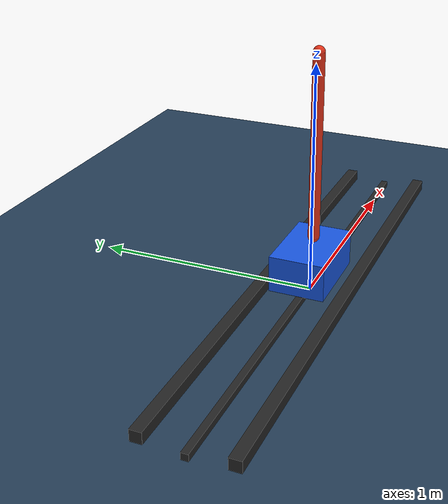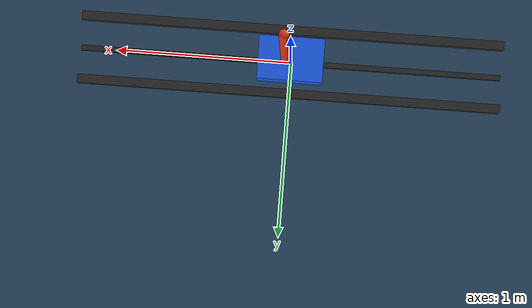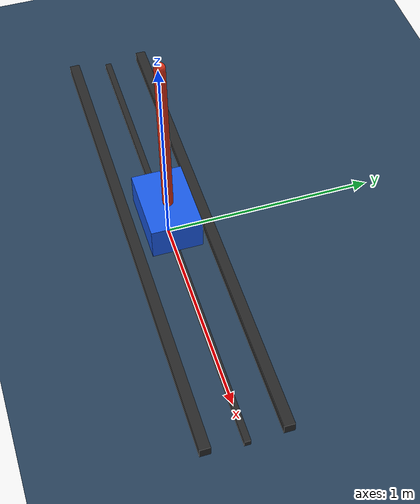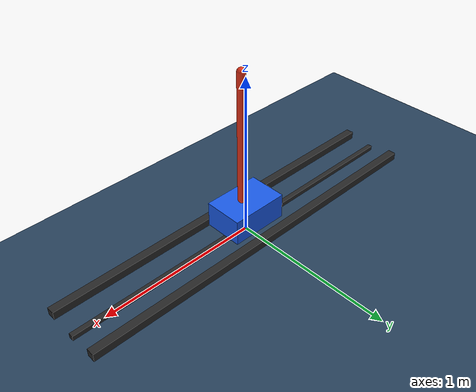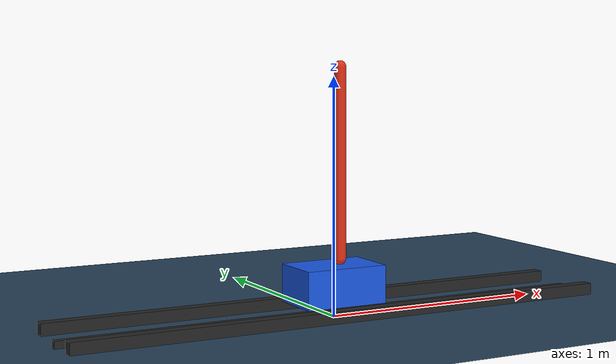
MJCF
<mujoco model="cartpole scene">
  <include file="cartpole_rail_torque.xml"/>

  <statistic center="0.2 0 0.4" extent=".8"/>

  <visual>
    <headlight diffuse="0.6 0.6 0.6" ambient="0.3 0.3 0.3" specular="0 0 0"/>
    <rgba haze="0.15 0.25 0.35 1"/>
    <global azimuth="120" elevation="-20"/>
  </visual>

  <asset>
    <texture type="skybox" builtin="gradient" rgb1="0.3 0.5 0.7" rgb2="0 0 0" width="512" height="3072"/>
    <texture type="2d" name="groundplane" builtin="checker" mark="edge" rgb1="0.2 0.3 0.4" rgb2="0.1 0.2 0.3"
      markrgb="0.8 0.8 0.8" width="300" height="300"/>
    <material name="groundplane" texture="groundplane" texuniform="true" texrepeat="5 5" reflectance="0.2"/>
  </asset>

  <worldbody>
    <light pos="0 0 1.5" dir="0 0 -1" directional="true"/>
    <geom name="floor" size="0 0 0.05" type="plane" material="groundplane"/>
  </worldbody>
</mujoco>

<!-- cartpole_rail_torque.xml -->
<mujoco model="cartpole_rail_torque">
  <compiler angle="degree" autolimits="true"/>

  <option timestep="0.002" gravity="0 0 -9.81" integrator="RK4"/>

  <default>
    <joint damping="0.02" armature="0.001"/>
    <geom friction="0.8 0.005 0.0001" condim="3"/>
    <motor ctrllimited="true"/>
  </default>

  <asset>
    <material name="mat_floor" rgba="0.30 0.30 0.30 1"/>
    <material name="mat_rail"  rgba="0.15 0.15 0.15 1"/>
    <material name="mat_cart"  rgba="0.10 0.35 0.90 1"/>
    <material name="mat_pole"  rgba="0.90 0.20 0.10 1"/>
  </asset>

  <worldbody>
    <light name="light" pos="0 -3 4" dir="0 1 -1" diffuse="0.8 0.8 0.8"/>
    <camera name="fixed" pos="0 -4 1.4" xyaxes="1 0 0 0 0.35 0.94"/>

    <!-- Visual rail/binario -->
    <geom name="rail_left"  type="box" pos="0  0.18 0.04" size="1.2 0.025 0.025" material="mat_rail" contype="0" conaffinity="0"/>
    <geom name="rail_right" type="box" pos="0 -0.18 0.04" size="1.2 0.025 0.025" material="mat_rail" contype="0" conaffinity="0"/>
    <geom name="rail_center" type="box" pos="0 0 0.015" size="1.2 0.015 0.015" material="mat_rail" contype="0" conaffinity="0"/>

    <body name="cart" pos="0 0 0.14">
      <joint name="cart_slide" type="slide" axis="1 0 0" limited="true" range="-1 1" damping="0.15"/>
      <inertial pos="0 0 0" mass="1.0" diaginertia="0.02 0.02 0.02"/>
      <geom name="cart_box" type="box" size="0.18 0.12 0.08" material="mat_cart"/>

      <body name="pole" pos="0 0 0.10">
        <joint name="pole_hinge" type="hinge" axis="0 1 0" limited="false" damping="0.005"/>
        <geom name="pole_capsule" type="capsule" fromto="0.03 0 0  0.03 0 0.80" size="0.025" material="mat_pole"/>
        <inertial pos="0.03 0 0.40" mass="0.20" diaginertia="0.006 0.006 0.0002"/>
      </body>
    </body>
  </worldbody>

  <actuator>
    <!-- Main cartpole input: ctrl is a FORCE [N] on the prismatic cart joint. -->
    <motor name="cart_force" joint="cart_slide" gear="1" ctrlrange="-30 30"/>

    <!-- Keep at 0 if you want the classic cartpole. -->
    <motor name="pole_torque" joint="pole_hinge" gear="1" ctrlrange="-5 5"/>
  </actuator>

  <sensor>
    <jointpos name="cart_position" joint="cart_slide"/>
    <jointvel name="cart_velocity" joint="cart_slide"/>
    <jointpos name="pole_angle" joint="pole_hinge"/>
    <jointvel name="pole_angular_velocity" joint="pole_hinge"/>
  </sensor>

  <keyframe>
    <!-- qpos: cart_slide, pole_hinge. qvel: cart_vel, pole_vel. -->
    <key name="slightly_tilted" qpos="0 5" qvel="0 0" ctrl="0 0"/>
  </keyframe>
</mujoco>
